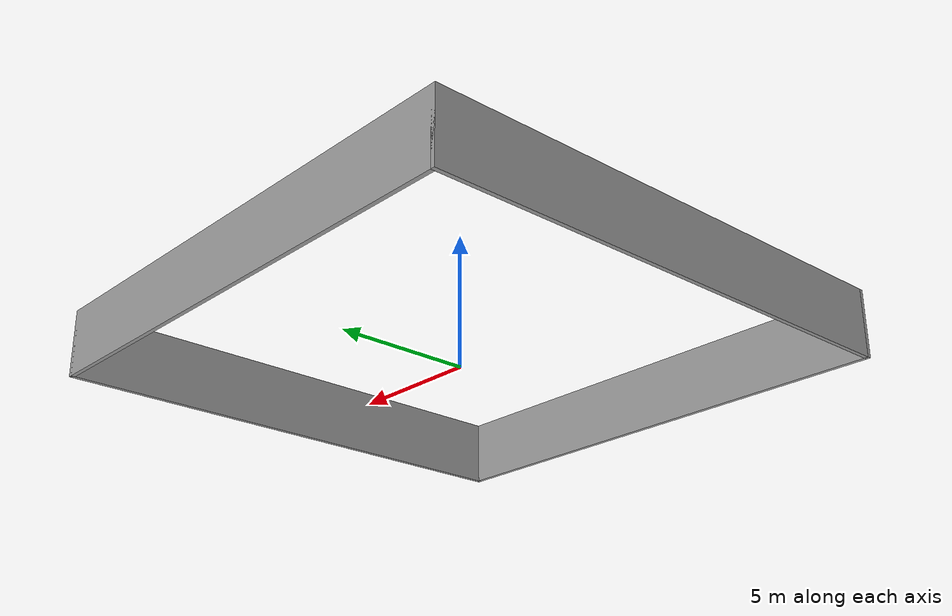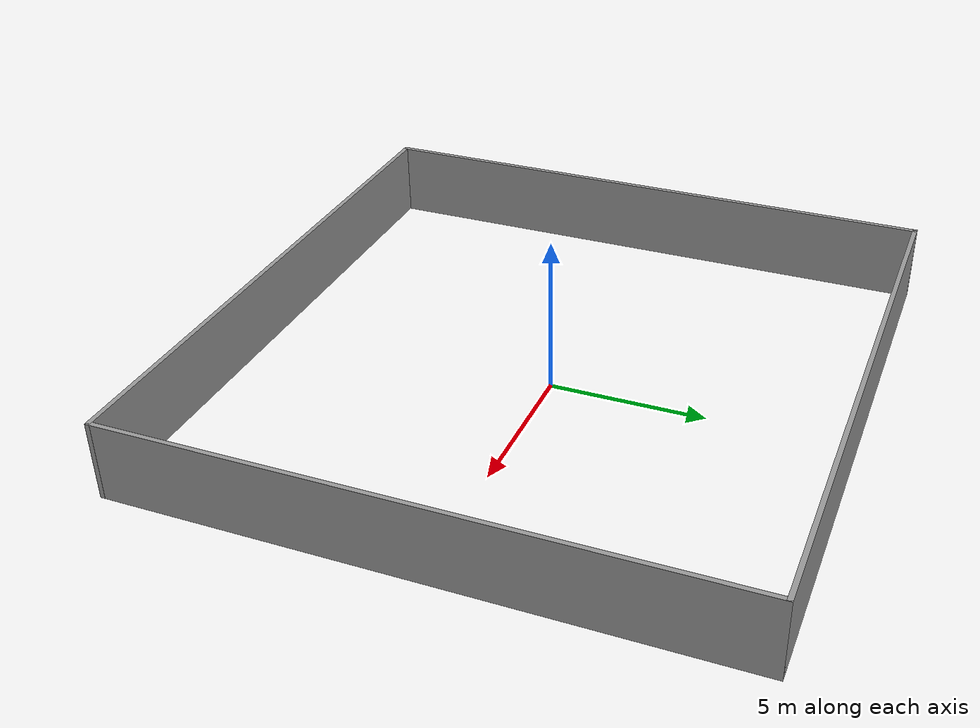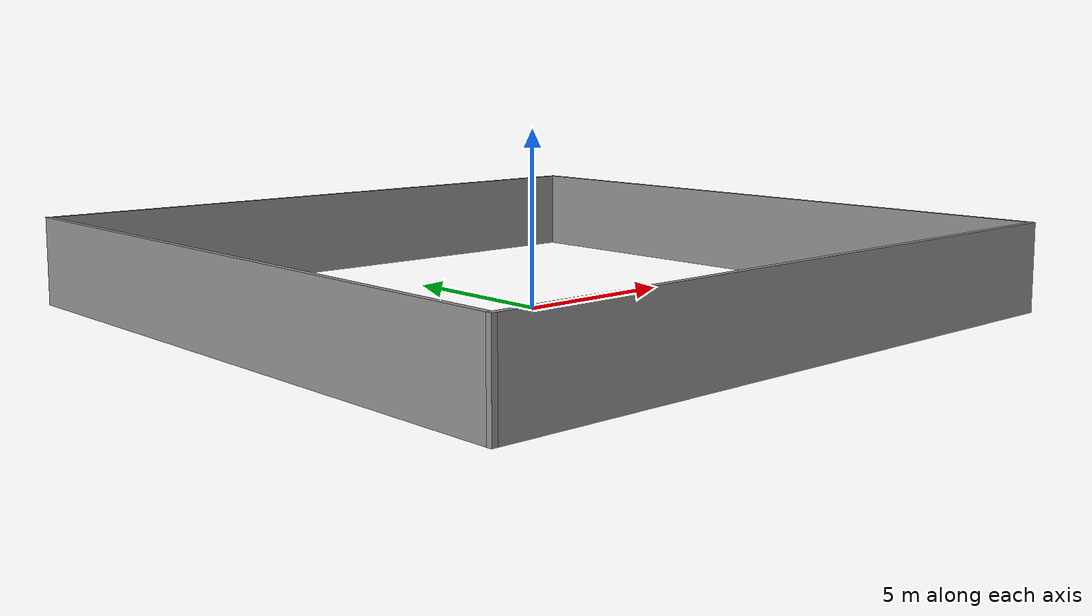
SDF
<?xml version='1.0'?>
<sdf version='1.7'>
  <model name='obstacle'>
    <pose>-0.054992 -0.079513 0 0 -0 0</pose>
    <link name='Wall_0'>
      <collision name='Wall_0_Collision'>
        <geometry>
          <box>
            <size>19.5 0.15 2.5</size>
          </box>
        </geometry>
        <pose>0 0 1.25 0 -0 0</pose>
      </collision>
      <visual name='Wall_0_Visual'>
        <pose>0 0 1.25 0 -0 0</pose>
        <geometry>
          <box>
            <size>19.5 0.15 2.5</size>
          </box>
        </geometry>
        <material>
          <script>
            <uri>file://media/materials/scripts/gazebo.material</uri>
            <name>Gazebo/Grey</name>
          </script>
          <ambient>1 1 1 1</ambient>
        </material>
        <meta>
          <layer>0</layer>
        </meta>
      </visual>
      <pose>0 9.55 0 0 -0 0</pose>
    </link>
    <link name='Wall_2'>
      <collision name='Wall_2_Collision'>
        <geometry>
          <box>
            <size>19.25 0.15 2.5</size>
          </box>
        </geometry>
        <pose>0 0 1.25 0 -0 0</pose>
      </collision>
      <visual name='Wall_2_Visual'>
        <pose>0 0 1.25 0 -0 0</pose>
        <geometry>
          <box>
            <size>19.25 0.15 2.5</size>
          </box>
        </geometry>
        <material>
          <script>
            <uri>file://media/materials/scripts/gazebo.material</uri>
            <name>Gazebo/Grey</name>
          </script>
          <ambient>1 1 1 1</ambient>
        </material>
        <meta>
          <layer>0</layer>
        </meta>
      </visual>
      <pose>9.675 -0 0 0 -0 -1.5708</pose>
    </link>
    <link name='Wall_3'>
      <collision name='Wall_3_Collision'>
        <geometry>
          <box>
            <size>19.5 0.15 2.5</size>
          </box>
        </geometry>
        <pose>0 0 1.25 0 -0 0</pose>
      </collision>
      <visual name='Wall_3_Visual'>
        <pose>0 0 1.25 0 -0 0</pose>
        <geometry>
          <box>
            <size>19.5 0.15 2.5</size>
          </box>
        </geometry>
        <material>
          <script>
            <uri>file://media/materials/scripts/gazebo.material</uri>
            <name>Gazebo/Grey</name>
          </script>
          <ambient>1 1 1 1</ambient>
        </material>
        <meta>
          <layer>0</layer>
        </meta>
      </visual>
      <pose>0 -9.55 0 0 -0 3.14159</pose>
    </link>
    <link name='Wall_4'>
      <collision name='Wall_4_Collision'>
        <geometry>
          <box>
            <size>19.25 0.15 2.5</size>
          </box>
        </geometry>
        <pose>0 0 1.25 0 -0 0</pose>
      </collision>
      <visual name='Wall_4_Visual'>
        <pose>0 0 1.25 0 -0 0</pose>
        <geometry>
          <box>
            <size>19.25 0.15 2.5</size>
          </box>
        </geometry>
        <material>
          <script>
            <uri>file://media/materials/scripts/gazebo.material</uri>
            <name>Gazebo/Grey</name>
          </script>
          <ambient>1 1 1 1</ambient>
        </material>
        <meta>
          <layer>0</layer>
        </meta>
      </visual>
      <pose>-9.675 -0 0 0 -0 1.5708</pose>
    </link>
    <static>1</static>
  </model>
</sdf>
